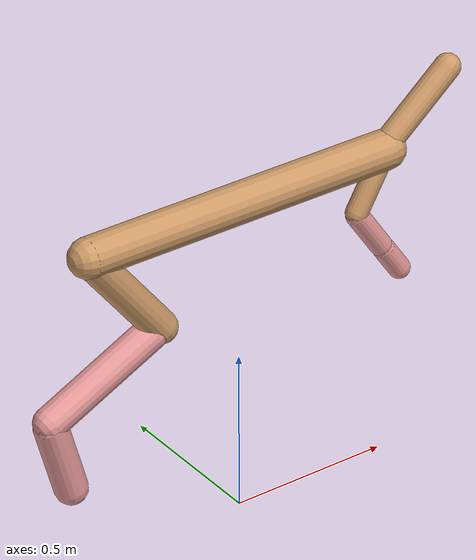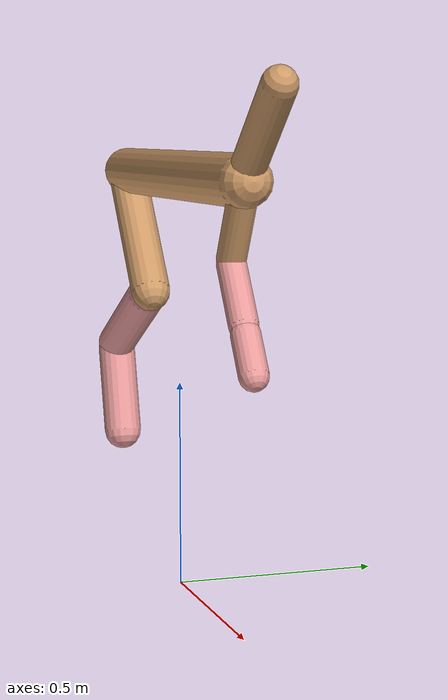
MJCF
<mujoco model="cheetah">
  <compiler angle="radian" coordinate="local" inertiafromgeom="true" settotalmass="14" />
  <default>
    <joint armature=".1" damping=".01" limited="true" solimplimit="0 .8 .03" solreflimit=".02 1" stiffness="8" />
    <geom conaffinity="0" condim="3" contype="1" friction="0.8 .1 .1" rgba="0.8 0.6 .4 1" solimp="0.0 0.8 0.01" solref="0.02 1" />
    <motor ctrllimited="true" ctrlrange="-1 1" />
  </default>
  <size nstack="300000" nuser_geom="1" />
  <option gravity="0 0 -9.81" timestep="0.01" />
  <worldbody>
    <body name="torso" pos="0.0 0.0 1.0021805121416454">
      <joint armature="0" axis="1 0 0" damping="0" limited="false" name="ignorex" pos="0 0 0" stiffness="0" type="slide" />
      <joint armature="0" axis="0 0 1" damping="0" limited="false" name="ignorez" pos="0 0 0" stiffness="0" type="slide" />
      <joint armature="0" axis="0 1 0" damping="0" limited="false" name="ignorey" pos="0 0 0" stiffness="0" type="hinge" />
      <geom fromto="-0.5 0.0 0.0 0.5101975782898774 0.0 0.0" name="torso" size="0.05953860356884403" type="capsule" />
      <geom axisangle="0 1 0 .87" name="head" pos="0.6101975782898775 0.0 0.1" size="0.039429605566245064 0.15" type="capsule" />

      <body name="bthigh" pos="-.5 0 0">
        <joint axis="0 1 0" damping="6" name="bthigh" pos="0 0 0" range="-.52 1.05" stiffness="240" type="hinge" />
        <geom axisangle="0 1 0 -3.8" name="bthigh" pos="0.12263999402196245 0.0 -0.1594319922285512" size="0.04963055850727551 0.18213235106825304" type="capsule" />
        <body name="bshin" pos="0.2052799880439249 0.0 -0.3088639844571024">
          <joint axis="0 1 0" damping="4.5" name="bshin" pos="0 0 0" range="-.785 .785" stiffness="180" type="hinge" />
          <geom axisangle="0 1 0 -2.03" name="bshin" pos="-0.1743574322012417 0.0 -0.08717871610062085" rgba="0.9 0.6 0.6 1" size="0.04963055850727551 0.18841277696715833" type="capsule" />
          <body name="bfoot" pos="-0.3487148644024834 0.0 -0.1743574322012417">
            <joint axis="0 1 0" damping="3" name="bfoot" pos="0 0 0" range="-.4 .785" stiffness="120" type="hinge" />
            <geom axisangle="0 1 0 -.27" name="bfoot" pos="0.03711254920874949 0.0 -0.11999724244162337" rgba="0.9 0.6 0.6 1" size="0.04963055850727551 0.11807200689941921" type="capsule" />
            <inertial mass="10" />
          </body>
        </body>
      </body>
      <body name="fthigh" pos="0.5101975782898776 0.0 0.0">
        <joint axis="0 1 0" damping="4.5" name="fthigh" pos="0 0 0" range="-1.5 0.8" stiffness="180" type="hinge" />
        <geom axisangle="0 1 0 .52" name="fthigh" pos="-0.05200150199991678 0.0 -0.08914543199985733" size="0.0335518685921867 0.09727955351994566" type="capsule" />
        <body name="fshin" pos="-0.10400300399983356 0.0 -0.17829086399971467">
          <joint axis="0 1 0" damping="3" name="fshin" pos="0 0 0" range="-1.2 1.1" stiffness="120" type="hinge" />
          <geom axisangle="0 1 0 -.6" name="fshin" pos="0.04833171200543965 0.0 -0.06692083200753182" rgba="0.9 0.6 0.6 1" size="0.0335518685921867 0.07753107273018225" type="capsule" />
          <body name="ffoot" pos="0.0966634240108793 0.0 -0.13384166401506364">
            <joint axis="0 1 0" damping="1.5" name="ffoot" pos="0 0 0" range="-3.1 -0.3" stiffness="60" type="hinge" />
            <geom axisangle="0 1 0 -.6" name="ffoot" pos="0.03483363021094898 0.0 -0.05418564699480953" rgba="0.9 0.6 0.6 1" size="0.0335518685921867 0.05119976501049772" type="capsule" />
            <inertial mass="10" />
          </body>
        </body>
      </body>
    </body>
  </worldbody>
  <actuator>
    <motor gear="120" joint="bthigh" name="bthigh" />
    <motor gear="90" joint="bshin" name="bshin" />
    <motor gear="60" joint="bfoot" name="bfoot" />
    <motor gear="120" joint="fthigh" name="fthigh" />
    <motor gear="60" joint="fshin" name="fshin" />
    <motor gear="30" joint="ffoot" name="ffoot" />
  </actuator>
</mujoco>
